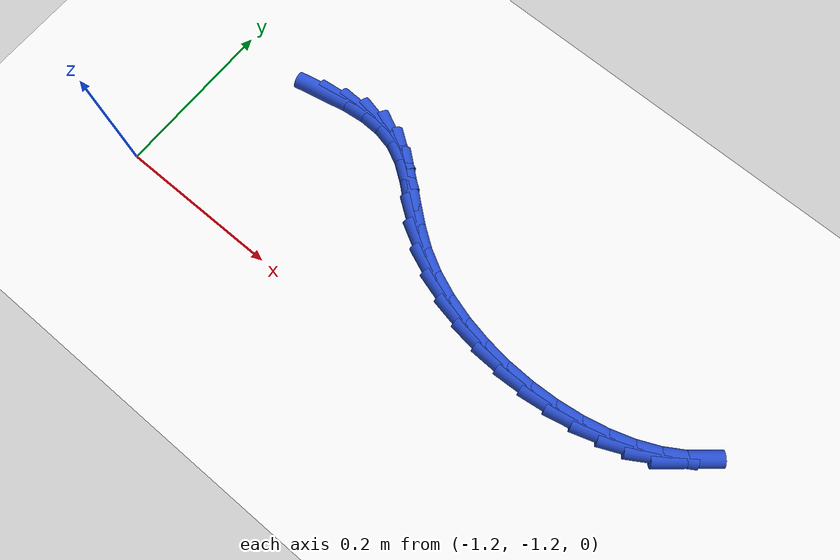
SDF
<sdf version="1.6">
 <world name="default">
  <model name="ground_plane">
   <static>1</static>
   <link name="link">
    <collision name="collision">
     <geometry><plane><normal>0 0 1</normal><size>100 100</size></plane></geometry>
     <surface><friction><ode><mu>100</mu><mu2>50</mu2></ode></friction></surface>
    </collision>
    <visual name="visual">
     <cast_shadows>0</cast_shadows>
     <geometry><plane><normal>0 0 1</normal><size>100 100</size></plane></geometry>
     <material>
      <script><uri>file://media/materials/scripts/gazebo.material</uri><name>Gazebo/WhiteGlow</name></script>
     </material>
    </visual>
   </link>
  </model>
  <model name="line">
   <link name="link_194">
    <pose>-1.0764580438047153 -0.9977710927683056 0.01 0 1.57 0.2066051809971878</pose>
    <collision name="collision">
     <geometry><cylinder><radius>0.01</radius><length>0.08</length></cylinder></geometry>
    </collision>
    <visual name="visual">
     <material>
      <script><name>Gazebo/Blue</name><uri>file://media/materials/scripts/gazebo.material</uri></script>
     </material>
     <geometry><cylinder><radius>0.01</radius><length>0.08</length></cylinder></geometry>
    </visual>
   </link>
   <link name="link_195">
    <pose>-1.0490662274825198 -0.9920298789406954 0.01 0 1.57 0.11097399440917381</pose>
    <collision name="collision">
     <geometry><cylinder><radius>0.01</radius><length>0.08</length></cylinder></geometry>
    </collision>
    <visual name="visual">
     <material>
      <script><name>Gazebo/Blue</name><uri>file://media/materials/scripts/gazebo.material</uri></script>
     </material>
     <geometry><cylinder><radius>0.01</radius><length>0.08</length></cylinder></geometry>
    </visual>
   </link>
   <link name="link_196">
    <pose>-1.0226150968134553 -0.9890823816682494 0.01 0 1.57 -0.03217076562943393</pose>
    <collision name="collision">
     <geometry><cylinder><radius>0.01</radius><length>0.08</length></cylinder></geometry>
    </collision>
    <visual name="visual">
     <material>
      <script><name>Gazebo/Blue</name><uri>file://media/materials/scripts/gazebo.material</uri></script>
     </material>
     <geometry><cylinder><radius>0.01</radius><length>0.08</length></cylinder></geometry>
    </visual>
   </link>
   <link name="link_197">
    <pose>-0.9973812959803756 -0.9898944525332449 0.01 0 1.57 -0.22915993162973575</pose>
    <collision name="collision">
     <geometry><cylinder><radius>0.01</radius><length>0.08</length></cylinder></geometry>
    </collision>
    <visual name="visual">
     <material>
      <script><name>Gazebo/Blue</name><uri>file://media/materials/scripts/gazebo.material</uri></script>
     </material>
     <geometry><cylinder><radius>0.01</radius><length>0.08</length></cylinder></geometry>
    </visual>
   </link>
   <link name="link_198">
    <pose>-0.973641469166134 -0.9954319431179584 0.01 0 1.57 -0.45952800288861956</pose>
    <collision name="collision">
     <geometry><cylinder><radius>0.01</radius><length>0.08</length></cylinder></geometry>
    </collision>
    <visual name="visual">
     <material>
      <script><name>Gazebo/Blue</name><uri>file://media/materials/scripts/gazebo.material</uri></script>
     </material>
     <geometry><cylinder><radius>0.01</radius><length>0.08</length></cylinder></geometry>
    </visual>
   </link>
   <link name="link_199">
    <pose>-0.9515384964863253 -1.0063698433536177 0.01 0 1.57 -0.6241310015153009</pose>
    <collision name="collision">
     <geometry><cylinder><radius>0.01</radius><length>0.08</length></cylinder></geometry>
    </collision>
    <visual name="visual">
     <material>
      <script><name>Gazebo/Blue</name><uri>file://media/materials/scripts/gazebo.material</uri></script>
     </material>
     <geometry><cylinder><radius>0.01</radius><length>0.08</length></cylinder></geometry>
    </visual>
   </link>
   <link name="link_200">
    <pose>-0.9303939925034541 -1.0215973522664812 0.01 0 1.57 -0.6970302244742387</pose>
    <collision name="collision">
     <geometry><cylinder><radius>0.01</radius><length>0.08</length></cylinder></geometry>
    </collision>
    <visual name="visual">
     <material>
      <script><name>Gazebo/Blue</name><uri>file://media/materials/scripts/gazebo.material</uri></script>
     </material>
     <geometry><cylinder><radius>0.01</radius><length>0.08</length></cylinder></geometry>
    </visual>
   </link>
   <link name="link_201">
    <pose>-0.9092180775096775 -1.0393263439507605 0.01 0 1.57 -0.6932179629767666</pose>
    <collision name="collision">
     <geometry><cylinder><radius>0.01</radius><length>0.08</length></cylinder></geometry>
    </collision>
    <visual name="visual">
     <material>
      <script><name>Gazebo/Blue</name><uri>file://media/materials/scripts/gazebo.material</uri></script>
     </material>
     <geometry><cylinder><radius>0.01</radius><length>0.08</length></cylinder></geometry>
    </visual>
   </link>
   <link name="link_202">
    <pose>-0.8870202772505883 -1.0577673996961134 0.01 0 1.57 -0.6221817787394204</pose>
    <collision name="collision">
     <geometry><cylinder><radius>0.01</radius><length>0.08</length></cylinder></geometry>
    </collision>
    <visual name="visual">
     <material>
      <script><name>Gazebo/Blue</name><uri>file://media/materials/scripts/gazebo.material</uri></script>
     </material>
     <geometry><cylinder><radius>0.01</radius><length>0.08</length></cylinder></geometry>
    </visual>
   </link>
   <link name="link_203">
    <pose>-0.8628101263729169 -1.0751311113490023 0.01 0 1.57 -0.5033156870865921</pose>
    <collision name="collision">
     <geometry><cylinder><radius>0.01</radius><length>0.08</length></cylinder></geometry>
    </collision>
    <visual name="visual">
     <material>
      <script><name>Gazebo/Blue</name><uri>file://media/materials/scripts/gazebo.material</uri></script>
     </material>
     <geometry><cylinder><radius>0.01</radius><length>0.08</length></cylinder></geometry>
    </visual>
   </link>
   <link name="link_204">
    <pose>-0.8358775450641956 -1.0899606096940218 0.01 0 1.57 -0.38943727084643937</pose>
    <collision name="collision">
     <geometry><cylinder><radius>0.01</radius><length>0.08</length></cylinder></geometry>
    </collision>
    <visual name="visual">
     <material>
      <script><name>Gazebo/Blue</name><uri>file://media/materials/scripts/gazebo.material</uri></script>
     </material>
     <geometry><cylinder><radius>0.01</radius><length>0.08</length></cylinder></geometry>
    </visual>
   </link>
   <link name="link_205">
    <pose>-0.8065293234060682 -1.1020050393274552 0.01 0 1.57 -0.28892335931763913</pose>
    <collision name="collision">
     <geometry><cylinder><radius>0.01</radius><length>0.08</length></cylinder></geometry>
    </collision>
    <visual name="visual">
     <material>
      <script><name>Gazebo/Blue</name><uri>file://media/materials/scripts/gazebo.material</uri></script>
     </material>
     <geometry><cylinder><radius>0.01</radius><length>0.08</length></cylinder></geometry>
    </visual>
   </link>
   <link name="link_206">
    <pose>-0.7753027019516385 -1.1112868604910855 0.01 0 1.57 -0.1982255484535788</pose>
    <collision name="collision">
     <geometry><cylinder><radius>0.01</radius><length>0.08</length></cylinder></geometry>
    </collision>
    <visual name="visual">
     <material>
      <script><name>Gazebo/Blue</name><uri>file://media/materials/scripts/gazebo.material</uri></script>
     </material>
     <geometry><cylinder><radius>0.01</radius><length>0.08</length></cylinder></geometry>
    </visual>
   </link>
   <link name="link_207">
    <pose>-0.7427349212540098 -1.1178285334266915 0.01 0 1.57 -0.11409004994896173</pose>
    <collision name="collision">
     <geometry><cylinder><radius>0.01</radius><length>0.08</length></cylinder></geometry>
    </collision>
    <visual name="visual">
     <material>
      <script><name>Gazebo/Blue</name><uri>file://media/materials/scripts/gazebo.material</uri></script>
     </material>
     <geometry><cylinder><radius>0.01</radius><length>0.08</length></cylinder></geometry>
    </visual>
   </link>
   <link name="link_208">
    <pose>-0.7093632218662859 -1.1216525183760544 0.01 0 1.57 -0.0335430517441355</pose>
    <collision name="collision">
     <geometry><cylinder><radius>0.01</radius><length>0.08</length></cylinder></geometry>
    </collision>
    <visual name="visual">
     <material>
      <script><name>Gazebo/Blue</name><uri>file://media/materials/scripts/gazebo.material</uri></script>
     </material>
     <geometry><cylinder><radius>0.01</radius><length>0.08</length></cylinder></geometry>
    </visual>
   </link>
   <link name="link_209">
    <pose>-0.6757248443415709 -1.1227812755809548 0.01 0 1.57 0.046239459374770024</pose>
    <collision name="collision">
     <geometry><cylinder><radius>0.01</radius><length>0.08</length></cylinder></geometry>
    </collision>
    <visual name="visual">
     <material>
      <script><name>Gazebo/Blue</name><uri>file://media/materials/scripts/gazebo.material</uri></script>
     </material>
     <geometry><cylinder><radius>0.01</radius><length>0.08</length></cylinder></geometry>
    </visual>
   </link>
   <link name="link_210">
    <pose>-0.6423570292329684 -1.1212372652831732 0.01 0 1.57 0.12811253057719763</pose>
    <collision name="collision">
     <geometry><cylinder><radius>0.01</radius><length>0.08</length></cylinder></geometry>
    </collision>
    <visual name="visual">
     <material>
      <script><name>Gazebo/Blue</name><uri>file://media/materials/scripts/gazebo.material</uri></script>
     </material>
     <geometry><cylinder><radius>0.01</radius><length>0.08</length></cylinder></geometry>
    </visual>
   </link>
   <link name="link_211">
    <pose>-0.6097970170935827 -1.1170429477244896 0.01 0 1.57 0.21517089724356506</pose>
    <collision name="collision">
     <geometry><cylinder><radius>0.01</radius><length>0.08</length></cylinder></geometry>
    </collision>
    <visual name="visual">
     <material>
      <script><name>Gazebo/Blue</name><uri>file://media/materials/scripts/gazebo.material</uri></script>
     </material>
     <geometry><cylinder><radius>0.01</radius><length>0.08</length></cylinder></geometry>
    </visual>
   </link>
   <link name="link_212">
    <pose>-0.5785820484765174 -1.1102207831466848 0.01 0 1.57 0.3109732046231253</pose>
    <collision name="collision">
     <geometry><cylinder><radius>0.01</radius><length>0.08</length></cylinder></geometry>
    </collision>
    <visual name="visual">
     <material>
      <script><name>Gazebo/Blue</name><uri>file://media/materials/scripts/gazebo.material</uri></script>
     </material>
     <geometry><cylinder><radius>0.01</radius><length>0.08</length></cylinder></geometry>
    </visual>
   </link>
   <link name="link_213">
    <pose>-0.5492493639348752 -1.1007932317915392 0.01 0 1.57 0.419745932587897</pose>
    <collision name="collision">
     <geometry><cylinder><radius>0.01</radius><length>0.08</length></cylinder></geometry>
    </collision>
    <visual name="visual">
     <material>
      <script><name>Gazebo/Blue</name><uri>file://media/materials/scripts/gazebo.material</uri></script>
     </material>
     <geometry><cylinder><radius>0.01</radius><length>0.08</length></cylinder></geometry>
    </visual>
   </link>
   <link name="link_214">
    <pose>-0.5223362040217621 -1.0887827539008332 0.01 0 1.57 0.5464473663187278</pose>
    <collision name="collision">
     <geometry><cylinder><radius>0.01</radius><length>0.08</length></cylinder></geometry>
    </collision>
    <visual name="visual">
     <material>
      <script><name>Gazebo/Blue</name><uri>file://media/materials/scripts/gazebo.material</uri></script>
     </material>
     <geometry><cylinder><radius>0.01</radius><length>0.08</length></cylinder></geometry>
    </visual>
   </link>
   <link name="link_215">
    <pose>-0.49837980929028103 -1.074211809716348 0.01 0 1.57 0.6963788178125417</pose>
    <collision name="collision">
     <geometry><cylinder><radius>0.01</radius><length>0.08</length></cylinder></geometry>
    </collision>
    <visual name="visual">
     <material>
      <script><name>Gazebo/Blue</name><uri>file://media/materials/scripts/gazebo.material</uri></script>
     </material>
     <geometry><cylinder><radius>0.01</radius><length>0.08</length></cylinder></geometry>
    </visual>
   </link>
  </model>
 </world>
</sdf>
